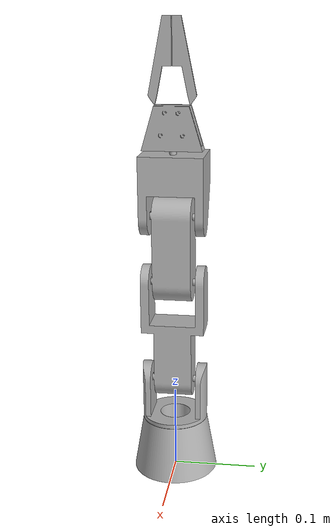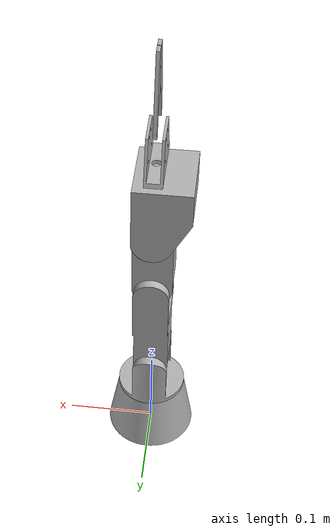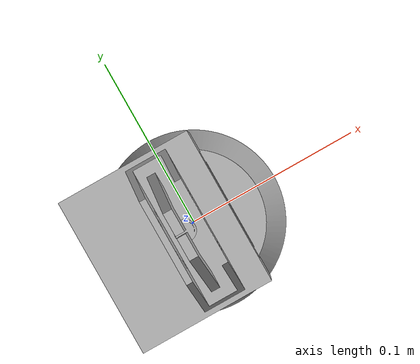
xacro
<?xml version="1.0"?>
<robot xmlns:xacro="http://www.ros.org/wiki/xacro" name="Manipulador">
    <xacro:arg name="initial_positions_file" default="initial_positions.yaml" />

    <!-- Import Manipulador urdf file -->
    <xacro:include filename="$(find Manipulador_description)/urdf/Manipulador.xacro" />

    <!-- Import control_xacro -->
    <xacro:include filename="Manipulador.ros2_control.xacro" />

    <xacro:Manipulador_ros2_control name="FakeSystem" initial_positions_file="$(arg initial_positions_file)"/>

</robot>

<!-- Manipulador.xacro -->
<robot name="Manipulador" xmlns:xacro="http://www.ros.org/wiki/xacro">

<xacro:include filename="$(find Manipulador_description)/urdf/materials.xacro" />
<xacro:include filename="$(find Manipulador_description)/urdf/Manipulador.trans" />
<xacro:include filename="$(find Manipulador_description)/urdf/Manipulador.gazebo" />
<link name="base_link">
  <inertial>
    <origin xyz="0.0 4.129580929120314e-17 0.028013158131108173" rpy="0 0 0"/>
    <mass value="0.8644380061148665"/>
    <inertia ixx="0.001136" iyy="0.001136" izz="0.001604" ixy="0.0" iyz="-0.0" ixz="-0.0"/>
  </inertial>
  <visual>
    <origin xyz="0 0 0" rpy="0 0 0"/>
    <geometry>
      <mesh filename="file://$(find Manipulador_description)/meshes/base_link.stl" scale="0.001 0.001 0.001"/>
    </geometry>
    <material name="silver"/>
  </visual>
  <collision>
    <origin xyz="0 0 0" rpy="0 0 0"/>
    <geometry>
      <mesh filename="file://$(find Manipulador_description)/meshes/base_link.stl" scale="0.001 0.001 0.001"/>
    </geometry>
  </collision>
</link>

<link name="base_cima_1">
  <inertial>
    <origin xyz="1.1970149693281284e-14 1.9829071827633267e-17 0.018193196281490173" rpy="0 0 0"/>
    <mass value="0.6751009456259592"/>
    <inertia ixx="0.000924" iyy="0.000555" izz="0.000645" ixy="-0.0" iyz="-0.0" ixz="0.0"/>
  </inertial>
  <visual>
    <origin xyz="-0.0 -0.0 -0.0669" rpy="0 0 0"/>
    <geometry>
      <mesh filename="file://$(find Manipulador_description)/meshes/base_cima_1.stl" scale="0.001 0.001 0.001"/>
    </geometry>
    <material name="silver"/>
  </visual>
  <collision>
    <origin xyz="-0.0 -0.0 -0.0669" rpy="0 0 0"/>
    <geometry>
      <mesh filename="file://$(find Manipulador_description)/meshes/base_cima_1.stl" scale="0.001 0.001 0.001"/>
    </geometry>
  </collision>
</link>

<link name="braco1_1">
  <inertial>
    <origin xyz="-2.740279011686726e-15 0.0275 0.049401867400451355" rpy="0 0 0"/>
    <mass value="1.7863299950890772"/>
    <inertia ixx="0.003721" iyy="0.003209" izz="0.000967" ixy="-0.0" iyz="0.0" ixz="0.0"/>
  </inertial>
  <visual>
    <origin xyz="0.0 0.0275 -0.1172" rpy="0 0 0"/>
    <geometry>
      <mesh filename="file://$(find Manipulador_description)/meshes/braco1_1.stl" scale="0.001 0.001 0.001"/>
    </geometry>
    <material name="silver"/>
  </visual>
  <collision>
    <origin xyz="0.0 0.0275 -0.1172" rpy="0 0 0"/>
    <geometry>
      <mesh filename="file://$(find Manipulador_description)/meshes/braco1_1.stl" scale="0.001 0.001 0.001"/>
    </geometry>
  </collision>
</link>

<link name="braco2_1">
  <inertial>
    <origin xyz="1.8642595259125363e-15 0.0275 0.03974999999999998" rpy="0 0 0"/>
    <mass value="1.833463405716618"/>
    <inertia ixx="0.002376" iyy="0.002348" izz="0.000597" ixy="0.0" iyz="0.0" ixz="-0.0"/>
  </inertial>
  <visual>
    <origin xyz="-0.0 0.0275 -0.2422" rpy="0 0 0"/>
    <geometry>
      <mesh filename="file://$(find Manipulador_description)/meshes/braco2_1.stl" scale="0.001 0.001 0.001"/>
    </geometry>
    <material name="silver"/>
  </visual>
  <collision>
    <origin xyz="-0.0 0.0275 -0.2422" rpy="0 0 0"/>
    <geometry>
      <mesh filename="file://$(find Manipulador_description)/meshes/braco2_1.stl" scale="0.001 0.001 0.001"/>
    </geometry>
  </collision>
</link>

<link name="braco3_1">
  <inertial>
    <origin xyz="-0.008884231331327241 0.027499999999999997 0.042248373954598184" rpy="0 0 0"/>
    <mass value="2.0477712972739655"/>
    <inertia ixx="0.002084" iyy="0.001584" izz="0.001847" ixy="0.0" iyz="-0.0" ixz="9.9e-05"/>
  </inertial>
  <visual>
    <origin xyz="-0.0 0.0275 -0.3217" rpy="0 0 0"/>
    <geometry>
      <mesh filename="file://$(find Manipulador_description)/meshes/braco3_1.stl" scale="0.001 0.001 0.001"/>
    </geometry>
    <material name="silver"/>
  </visual>
  <collision>
    <origin xyz="-0.0 0.0275 -0.3217" rpy="0 0 0"/>
    <geometry>
      <mesh filename="file://$(find Manipulador_description)/meshes/braco3_1.stl" scale="0.001 0.001 0.001"/>
    </geometry>
  </collision>
</link>

<link name="garra_base_1">
  <inertial>
    <origin xyz="-1.0054196140392503e-14 -4.834082544152743e-14 0.018196855600843498" rpy="0 0 0"/>
    <mass value="0.16038383685906207"/>
    <inertia ixx="8.6e-05" iyy="4.6e-05" izz="5.9e-05" ixy="0.0" iyz="0.0" ixz="-0.0"/>
  </inertial>
  <visual>
    <origin xyz="-0.0 -0.0 -0.39885" rpy="0 0 0"/>
    <geometry>
      <mesh filename="file://$(find Manipulador_description)/meshes/garra_base_1.stl" scale="0.001 0.001 0.001"/>
    </geometry>
    <material name="silver"/>
  </visual>
  <collision>
    <origin xyz="-0.0 -0.0 -0.39885" rpy="0 0 0"/>
    <geometry>
      <mesh filename="file://$(find Manipulador_description)/meshes/garra_base_1.stl" scale="0.001 0.001 0.001"/>
    </geometry>
  </collision>
</link>

<link name="garra_esquerda_1">
  <inertial>
    <origin xyz="0.0 -0.007993386734000607 0.05263724971926159" rpy="0 0 0"/>
    <mass value="0.03761222131658412"/>
    <inertia ixx="2.4e-05" iyy="2.2e-05" izz="2e-06" ixy="0.0" iyz="5e-06" ixz="0.0"/>
  </inertial>
  <visual>
    <origin xyz="-0.0 -0.02 -0.44885" rpy="0 0 0"/>
    <geometry>
      <mesh filename="file://$(find Manipulador_description)/meshes/garra_esquerda_1.stl" scale="0.001 0.001 0.001"/>
    </geometry>
    <material name="silver"/>
  </visual>
  <collision>
    <origin xyz="-0.0 -0.02 -0.44885" rpy="0 0 0"/>
    <geometry>
      <mesh filename="file://$(find Manipulador_description)/meshes/garra_esquerda_1.stl" scale="0.001 0.001 0.001"/>
    </geometry>
  </collision>
</link>

<link name="garra_direita_1">
  <inertial>
    <origin xyz="2.3171326867272047e-19 0.007993386734000405 0.05263724971926148" rpy="0 0 0"/>
    <mass value="0.037612221316584114"/>
    <inertia ixx="2.4e-05" iyy="2.2e-05" izz="2e-06" ixy="0.0" iyz="-5e-06" ixz="0.0"/>
  </inertial>
  <visual>
    <origin xyz="-0.0 0.02 -0.44885" rpy="0 0 0"/>
    <geometry>
      <mesh filename="file://$(find Manipulador_description)/meshes/garra_direita_1.stl" scale="0.001 0.001 0.001"/>
    </geometry>
    <material name="silver"/>
  </visual>
  <collision>
    <origin xyz="-0.0 0.02 -0.44885" rpy="0 0 0"/>
    <geometry>
      <mesh filename="file://$(find Manipulador_description)/meshes/garra_direita_1.stl" scale="0.001 0.001 0.001"/>
    </geometry>
  </collision>
</link>

<joint name="base_cima_to_base_link" type="continuous">
  <origin xyz="0.0 0.0 0.0669" rpy="0 0 0"/>
  <parent link="base_link"/>
  <child link="base_cima_1"/>
  <axis xyz="0.0 0.0 -1.0"/>
</joint>

<joint name="braco1_to_base_cima" type="continuous">
  <origin xyz="-0.0 -0.0275 0.0503" rpy="0 0 0"/>
  <parent link="base_cima_1"/>
  <child link="braco1_1"/>
  <axis xyz="0.0 -1.0 0.0"/>
</joint>

<joint name="braco2_to_braco1" type="continuous">
  <origin xyz="0.0 0.0 0.125" rpy="0 0 0"/>
  <parent link="braco1_1"/>
  <child link="braco2_1"/>
  <axis xyz="0.0 -1.0 0.0"/>
</joint>

<joint name="braco3_to_braco2" type="continuous">
  <origin xyz="0.0 0.0 0.0795" rpy="0 0 0"/>
  <parent link="braco2_1"/>
  <child link="braco3_1"/>
  <axis xyz="0.0 -1.0 0.0"/>
</joint>

<joint name="garra_base_to braco3" type="continuous">
  <origin xyz="0.0 0.0275 0.07715" rpy="0 0 0"/>
  <parent link="braco3_1"/>
  <child link="garra_base_1"/>
  <axis xyz="0.0 0.0 1.0"/>
</joint>

<joint name="garra_esquerda_to_garra_base" type="prismatic">
  <origin xyz="0.0 0.02 0.05" rpy="0 0 0"/>
  <parent link="garra_base_1"/>
  <child link="garra_esquerda_1"/>
  <axis xyz="0.0 -1.0 0.0"/>
  <limit upper="0.0" lower="-0.025" effort="100" velocity="100"/>
</joint>

<joint name="garra_direita_to_garra_base" type="prismatic">
  <origin xyz="0.0 -0.02 0.05" rpy="0 0 0"/>
  <parent link="garra_base_1"/>
  <child link="garra_direita_1"/>
  <axis xyz="0.0 -1.0 0.0"/>
  <limit upper="0.025" lower="0.0" effort="100" velocity="100"/>
</joint>

</robot>

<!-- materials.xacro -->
<robot name="Manipulador" xmlns:xacro="http://www.ros.org/wiki/xacro" >

<material name="silver">
  <color rgba="0.700 0.700 0.700 1.000"/>
</material>

</robot>

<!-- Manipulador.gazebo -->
<robot name="Manipulador" xmlns:xacro="http://www.ros.org/wiki/xacro" >

<xacro:property name="body_color" value="Gazebo/Silver" />

<gazebo>
  <plugin name="control" filename="libgazebo_ros_control.so"/>
</gazebo>
<gazebo reference="base_link">
  <material>${body_color}</material>
  <mu1>0.2</mu1>
  <mu2>0.2</mu2>
  <self_collide>true</self_collide>
  <gravity>true</gravity>
</gazebo>

<gazebo reference="base_cima_1">
  <material>${body_color}</material>
  <mu1>0.2</mu1>
  <mu2>0.2</mu2>
  <self_collide>true</self_collide>
</gazebo>

<gazebo reference="braco1_1">
  <material>${body_color}</material>
  <mu1>0.2</mu1>
  <mu2>0.2</mu2>
  <self_collide>true</self_collide>
</gazebo>

<gazebo reference="braco2_1">
  <material>${body_color}</material>
  <mu1>0.2</mu1>
  <mu2>0.2</mu2>
  <self_collide>true</self_collide>
</gazebo>

<gazebo reference="braco3_1">
  <material>${body_color}</material>
  <mu1>0.2</mu1>
  <mu2>0.2</mu2>
  <self_collide>true</self_collide>
</gazebo>

<gazebo reference="garra_base_1">
  <material>${body_color}</material>
  <mu1>0.2</mu1>
  <mu2>0.2</mu2>
  <self_collide>true</self_collide>
</gazebo>

<gazebo reference="garra_esquerda_1">
  <material>${body_color}</material>
  <mu1>0.2</mu1>
  <mu2>0.2</mu2>
  <self_collide>true</self_collide>
</gazebo>

<gazebo reference="garra_direita_1">
  <material>${body_color}</material>
  <mu1>0.2</mu1>
  <mu2>0.2</mu2>
  <self_collide>true</self_collide>
</gazebo>

</robot>
